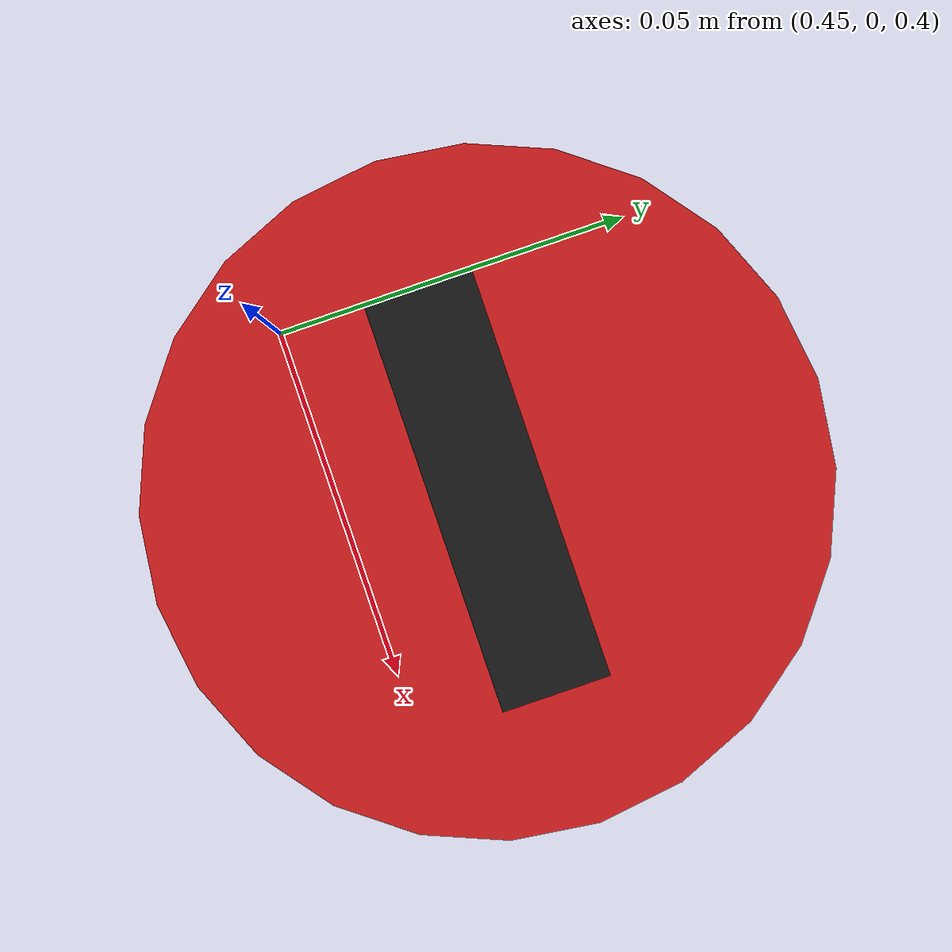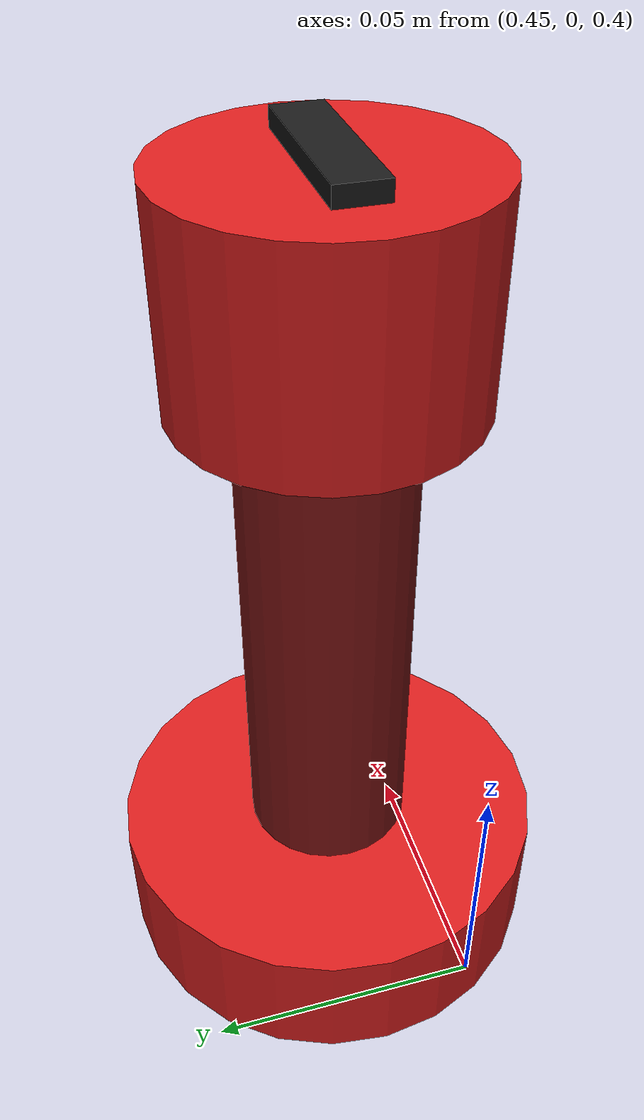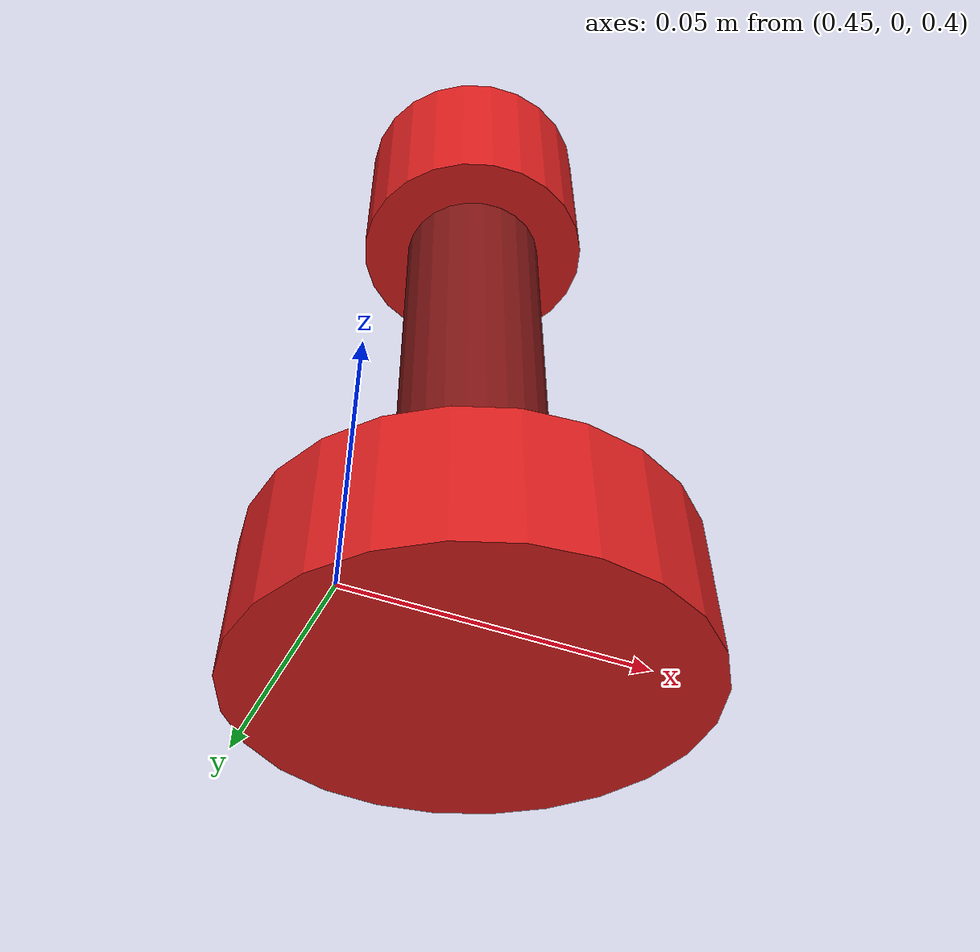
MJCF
<mujoco model="energy_unit">
  <asset>
    <material name="energy_red" rgba="0.85 0.12 0.12 1" specular="0.3" shininess="0.3"/>
    <material name="energy_dark" rgba="0.5 0.08 0.08 1"/>
  </asset>

  <worldbody>
    <body name="energy_unit" pos="0.48 0.02 0.4005">
      <freejoint name="energy_unit_free"/>
      <inertial pos="0 0 0.07" mass="0.45" diaginertia="0.0009 0.0009 0.00035"/>
      <!-- 底端盖：Ø80 (r0.040)，z ∈ [0, 0.025] -->
      <geom name="eu_bottom" type="cylinder" material="energy_red"
            pos="0 0 0.0125" size="0.040 0.0125"
            friction="1.2 0.02 0.001" condim="6" solref="0.004 1" solimp="0.95 0.99 0.001"/>
      <!-- 细腰（可夹持段，仿真代理 Ø30, r0.015）：z ∈ [0.025, 0.115]，供夹爪自上而下环入夹持 -->
      <geom name="eu_waist" type="cylinder" material="energy_dark"
            pos="0 0 0.070 " size="0.015 0.045"
            friction="1.8 0.05 0.001" condim="6" solref="0.004 1" solimp="0.97 0.99 0.001"/>
      <!-- 顶端盖（仅视觉，不参与碰撞，避免遮挡自上而下的夹持路径）Ø50 -->
      <geom name="eu_top" type="cylinder" material="energy_red"
            pos="0 0 0.1325" size="0.025 0.0175" contype="0" conaffinity="0"/>
      <!-- 顶部旋转轴参考标记（深色小块） -->
      <geom name="eu_mark" type="box" pos="0 0 0.151" size="0.015 0.004 0.002"
            rgba="0.1 0.1 0.1 1" contype="0" conaffinity="0"/>
    </body>
  </worldbody>
</mujoco>
